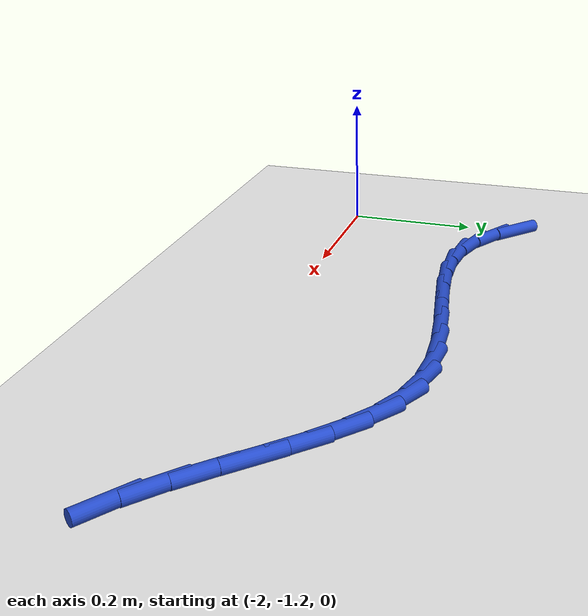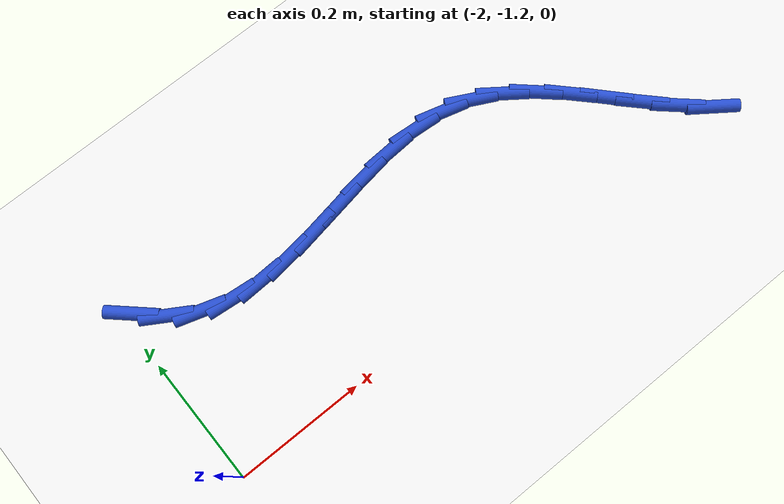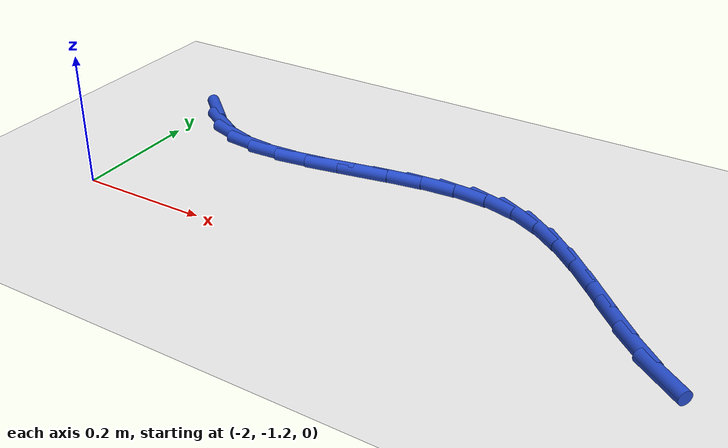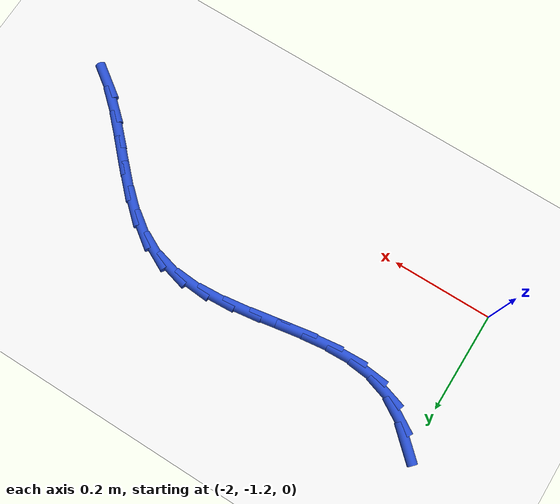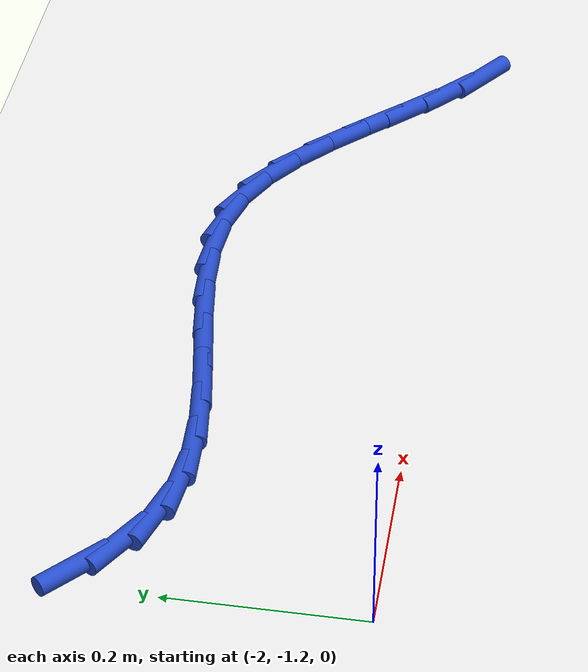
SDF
<sdf version="1.6">
 <world name="default">
  <model name="ground_plane">
   <static>1</static>
   <link name="link">
    <collision name="collision">
     <geometry><plane><normal>0 0 1</normal><size>100 100</size></plane></geometry>
     <surface><friction><ode><mu>100</mu><mu2>50</mu2></ode></friction></surface>
    </collision>
    <visual name="visual">
     <cast_shadows>0</cast_shadows>
     <geometry><plane><normal>0 0 1</normal><size>100 100</size></plane></geometry>
     <material>
      <script><uri>file://media/materials/scripts/gazebo.material</uri><name>Gazebo/WhiteGlow</name></script>
     </material>
    </visual>
   </link>
  </model>
  <model name="line">
   <link name="link_104">
    <pose>-1.9840845319282006 -0.9179603726015029 0.01 0 1.57 -0.7442389454381177</pose>
    <collision name="collision">
     <geometry><cylinder><radius>0.01</radius><length>0.08</length></cylinder></geometry>
    </collision>
    <visual name="visual">
     <material>
      <script><name>Gazebo/Blue</name><uri>file://media/materials/scripts/gazebo.material</uri></script>
     </material>
     <geometry><cylinder><radius>0.01</radius><length>0.08</length></cylinder></geometry>
    </visual>
   </link>
   <link name="link_105">
    <pose>-1.9471019620820917 -0.9520173576768454 0.01 0 1.57 -0.5459743679485608</pose>
    <collision name="collision">
     <geometry><cylinder><radius>0.01</radius><length>0.08</length></cylinder></geometry>
    </collision>
    <visual name="visual">
     <material>
      <script><name>Gazebo/Blue</name><uri>file://media/materials/scripts/gazebo.material</uri></script>
     </material>
     <geometry><cylinder><radius>0.01</radius><length>0.08</length></cylinder></geometry>
    </visual>
   </link>
   <link name="link_106">
    <pose>-1.9061279652567453 -0.976912337087034 0.01 0 1.57 -0.3022966534600848</pose>
    <collision name="collision">
     <geometry><cylinder><radius>0.01</radius><length>0.08</length></cylinder></geometry>
    </collision>
    <visual name="visual">
     <material>
      <script><name>Gazebo/Blue</name><uri>file://media/materials/scripts/gazebo.material</uri></script>
     </material>
     <geometry><cylinder><radius>0.01</radius><length>0.08</length></cylinder></geometry>
    </visual>
   </link>
   <link name="link_107">
    <pose>-1.8611647604202872 -0.990934313087555 0.01 0 1.57 -0.09986554539027467</pose>
    <collision name="collision">
     <geometry><cylinder><radius>0.01</radius><length>0.08</length></cylinder></geometry>
    </collision>
    <visual name="visual">
     <material>
      <script><name>Gazebo/Blue</name><uri>file://media/materials/scripts/gazebo.material</uri></script>
     </material>
     <geometry><cylinder><radius>0.01</radius><length>0.08</length></cylinder></geometry>
    </visual>
   </link>
   <link name="link_108">
    <pose>-1.812894739780962 -0.995770914405161 0.01 0 1.57 0.041193756178638505</pose>
    <collision name="collision">
     <geometry><cylinder><radius>0.01</radius><length>0.08</length></cylinder></geometry>
    </collision>
    <visual name="visual">
     <material>
      <script><name>Gazebo/Blue</name><uri>file://media/materials/scripts/gazebo.material</uri></script>
     </material>
     <geometry><cylinder><radius>0.01</radius><length>0.08</length></cylinder></geometry>
    </visual>
   </link>
   <link name="link_109">
    <pose>-1.7621139926010252 -0.99367788064582 0.01 0 1.57 0.12819827083507027</pose>
    <collision name="collision">
     <geometry><cylinder><radius>0.01</radius><length>0.08</length></cylinder></geometry>
    </collision>
    <visual name="visual">
     <material>
      <script><name>Gazebo/Blue</name><uri>file://media/materials/scripts/gazebo.material</uri></script>
     </material>
     <geometry><cylinder><radius>0.01</radius><length>0.08</length></cylinder></geometry>
    </visual>
   </link>
   <link name="link_110">
    <pose>-1.7096186081427314 -0.9869109514154996 0.01 0 1.57 0.17029494463187705</pose>
    <collision name="collision">
     <geometry><cylinder><radius>0.01</radius><length>0.08</length></cylinder></geometry>
    </collision>
    <visual name="visual">
     <material>
      <script><name>Gazebo/Blue</name><uri>file://media/materials/scripts/gazebo.material</uri></script>
     </material>
     <geometry><cylinder><radius>0.01</radius><length>0.08</length></cylinder></geometry>
    </visual>
   </link>
   <link name="link_111">
    <pose>-1.6562046756683368 -0.9777258663201682 0.01 0 1.57 0.1728583861198156</pose>
    <collision name="collision">
     <geometry><cylinder><radius>0.01</radius><length>0.08</length></cylinder></geometry>
    </collision>
    <visual name="visual">
     <material>
      <script><name>Gazebo/Blue</name><uri>file://media/materials/scripts/gazebo.material</uri></script>
     </material>
     <geometry><cylinder><radius>0.01</radius><length>0.08</length></cylinder></geometry>
    </visual>
   </link>
   <link name="link_112">
    <pose>-1.6026682844400977 -0.9683783649657938 0.01 0 1.57 0.13637484584086237</pose>
    <collision name="collision">
     <geometry><cylinder><radius>0.01</radius><length>0.08</length></cylinder></geometry>
    </collision>
    <visual name="visual">
     <material>
      <script><name>Gazebo/Blue</name><uri>file://media/materials/scripts/gazebo.material</uri></script>
     </material>
     <geometry><cylinder><radius>0.01</radius><length>0.08</length></cylinder></geometry>
    </visual>
   </link>
   <link name="link_113">
    <pose>-1.5498055237202686 -0.9611241869583442 0.01 0 1.57 0.05646730833935148</pose>
    <collision name="collision">
     <geometry><cylinder><radius>0.01</radius><length>0.08</length></cylinder></geometry>
    </collision>
    <visual name="visual">
     <material>
      <script><name>Gazebo/Blue</name><uri>file://media/materials/scripts/gazebo.material</uri></script>
     </material>
     <geometry><cylinder><radius>0.01</radius><length>0.08</length></cylinder></geometry>
    </visual>
   </link>
   <link name="link_114">
    <pose>-1.4984124827711056 -0.9582190719037877 0.01 0 1.57 -0.07516639966863074</pose>
    <collision name="collision">
     <geometry><cylinder><radius>0.01</radius><length>0.08</length></cylinder></geometry>
    </collision>
    <visual name="visual">
     <material>
      <script><name>Gazebo/Blue</name><uri>file://media/materials/scripts/gazebo.material</uri></script>
     </material>
     <geometry><cylinder><radius>0.01</radius><length>0.08</length></cylinder></geometry>
    </visual>
   </link>
   <link name="link_115">
    <pose>-1.449285250854864 -0.9619187594080922 0.01 0 1.57 -0.2655896750523639</pose>
    <collision name="collision">
     <geometry><cylinder><radius>0.01</radius><length>0.08</length></cylinder></geometry>
    </collision>
    <visual name="visual">
     <material>
      <script><name>Gazebo/Blue</name><uri>file://media/materials/scripts/gazebo.material</uri></script>
     </material>
     <geometry><cylinder><radius>0.01</radius><length>0.08</length></cylinder></geometry>
    </visual>
   </link>
   <link name="link_116">
    <pose>-1.4032103091631976 -0.9744518696691618 0.01 0 1.57 -0.47404549611570657</pose>
    <collision name="collision">
     <geometry><cylinder><radius>0.01</radius><length>0.08</length></cylinder></geometry>
    </collision>
    <visual name="visual">
     <material>
      <script><name>Gazebo/Blue</name><uri>file://media/materials/scripts/gazebo.material</uri></script>
     </material>
     <geometry><cylinder><radius>0.01</radius><length>0.08</length></cylinder></geometry>
    </visual>
   </link>
   <link name="link_117">
    <pose>-1.3603969706141783 -0.9964179276603714 0.01 0 1.57 -0.6321809481889272</pose>
    <collision name="collision">
     <geometry><cylinder><radius>0.01</radius><length>0.08</length></cylinder></geometry>
    </collision>
    <visual name="visual">
     <material>
      <script><name>Gazebo/Blue</name><uri>file://media/materials/scripts/gazebo.material</uri></script>
     </material>
     <geometry><cylinder><radius>0.01</radius><length>0.08</length></cylinder></geometry>
    </visual>
   </link>
   <link name="link_118">
    <pose>-1.320159543758409 -1.025890249955045 0.01 0 1.57 -0.7364359540964714</pose>
    <collision name="collision">
     <geometry><cylinder><radius>0.01</radius><length>0.08</length></cylinder></geometry>
    </collision>
    <visual name="visual">
     <material>
      <script><name>Gazebo/Blue</name><uri>file://media/materials/scripts/gazebo.material</uri></script>
     </material>
     <geometry><cylinder><radius>0.01</radius><length>0.08</length></cylinder></geometry>
    </visual>
   </link>
   <link name="link_119">
    <pose>-1.2817353015089168 -1.0607247149979075 0.01 0 1.57 -0.7943961316136965</pose>
    <collision name="collision">
     <geometry><cylinder><radius>0.01</radius><length>0.08</length></cylinder></geometry>
    </collision>
    <visual name="visual">
     <material>
      <script><name>Gazebo/Blue</name><uri>file://media/materials/scripts/gazebo.material</uri></script>
     </material>
     <geometry><cylinder><radius>0.01</radius><length>0.08</length></cylinder></geometry>
    </visual>
   </link>
   <link name="link_120">
    <pose>-1.2443615167787292 -1.0987772012336836 0.01 0 1.57 -0.8121634044971493</pose>
    <collision name="collision">
     <geometry><cylinder><radius>0.01</radius><length>0.08</length></cylinder></geometry>
    </collision>
    <visual name="visual">
     <material>
      <script><name>Gazebo/Blue</name><uri>file://media/materials/scripts/gazebo.material</uri></script>
     </material>
     <geometry><cylinder><radius>0.01</radius><length>0.08</length></cylinder></geometry>
    </visual>
   </link>
   <link name="link_121">
    <pose>-1.2072754624808724 -1.1379035871070984 0.01 0 1.57 -0.7919456926693392</pose>
    <collision name="collision">
     <geometry><cylinder><radius>0.01</radius><length>0.08</length></cylinder></geometry>
    </collision>
    <visual name="visual">
     <material>
      <script><name>Gazebo/Blue</name><uri>file://media/materials/scripts/gazebo.material</uri></script>
     </material>
     <geometry><cylinder><radius>0.01</radius><length>0.08</length></cylinder></geometry>
    </visual>
   </link>
   <link name="link_122">
    <pose>-1.1697144115283744 -1.1759597510628752 0.01 0 1.57 -0.7317164608014808</pose>
    <collision name="collision">
     <geometry><cylinder><radius>0.01</radius><length>0.08</length></cylinder></geometry>
    </collision>
    <visual name="visual">
     <material>
      <script><name>Gazebo/Blue</name><uri>file://media/materials/scripts/gazebo.material</uri></script>
     </material>
     <geometry><cylinder><radius>0.01</radius><length>0.08</length></cylinder></geometry>
    </visual>
   </link>
   <link name="link_123">
    <pose>-1.1309156368342623 -1.2108015715457396 0.01 0 1.57 -0.6257628203262826</pose>
    <collision name="collision">
     <geometry><cylinder><radius>0.01</radius><length>0.08</length></cylinder></geometry>
    </collision>
    <visual name="visual">
     <material>
      <script><name>Gazebo/Blue</name><uri>file://media/materials/scripts/gazebo.material</uri></script>
     </material>
     <geometry><cylinder><radius>0.01</radius><length>0.08</length></cylinder></geometry>
    </visual>
   </link>
  </model>
 </world>
</sdf>
